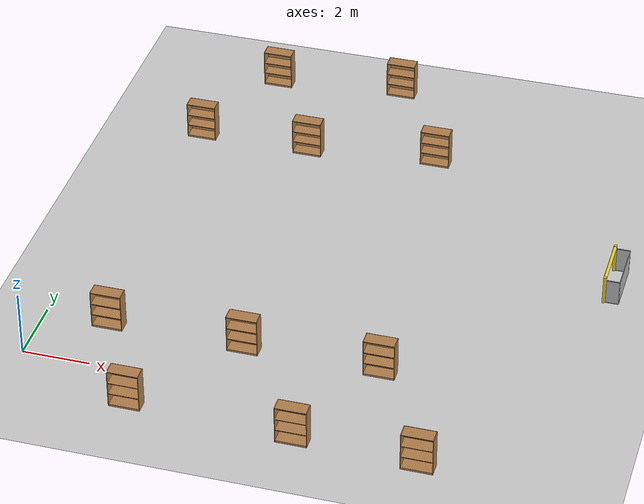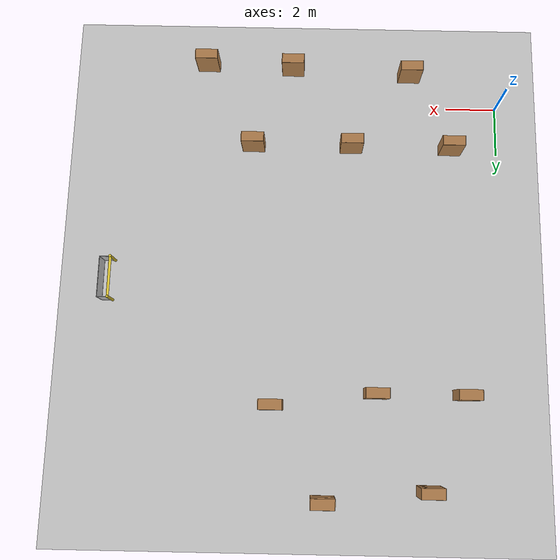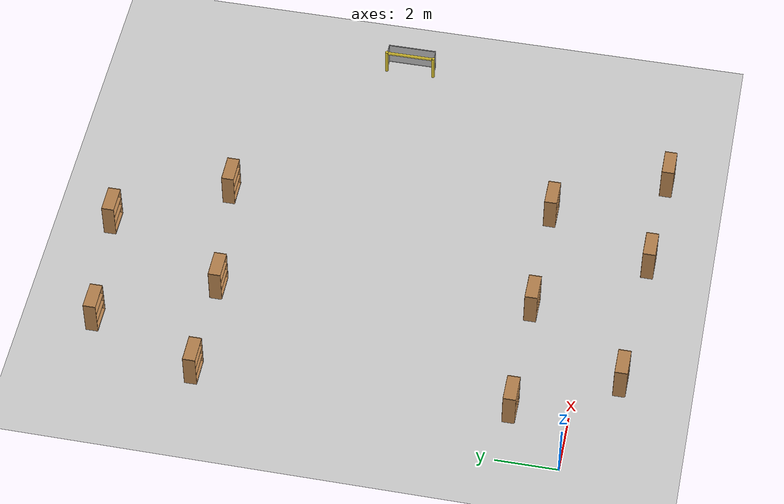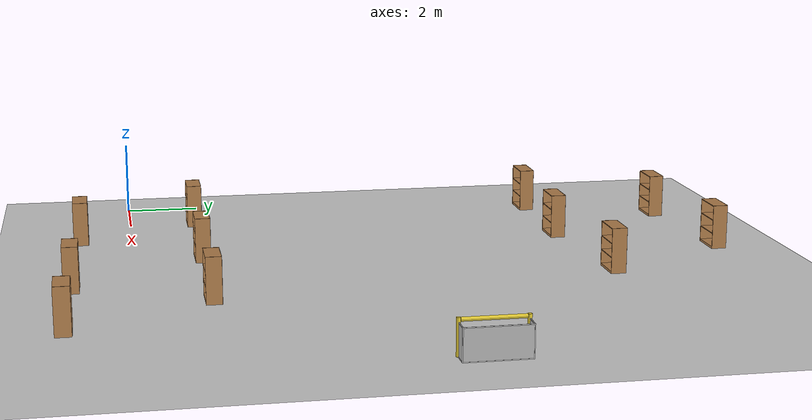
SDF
<sdf version="1.6">
 <world name="default">
  <light name="sun" type="directional">
   <pose>0 0 10 0 -0 0</pose>
   <diffuse>0.8 0.8 0.8 1</diffuse>
   <specular>0.2 0.2 0.2 1</specular>
   <attenuation>
    <range>1000</range>
    <constant>0.9</constant>
    <linear>0.01</linear>
    <quadratic>0.001</quadratic>
   </attenuation>
   <direction>-0.5 0.1 -0.9</direction>
  </light>
  <model name="ground_plane">
   <static>1</static>
   <link name="link">
    <collision name="collision">
     <geometry><plane><normal>0 0 1</normal><size>100 100</size></plane></geometry>
     <surface>
      <contact><collide_bitmask>65535</collide_bitmask></contact>
      <friction><ode><mu>100</mu><mu2>50</mu2></ode></friction>
     </surface>
    </collision>
    <visual name="visual">
     <cast_shadows>0</cast_shadows>
     <geometry><plane><normal>0 0 1</normal><size>100 100</size></plane></geometry>
     <material>
      <script><uri>file://media/materials/scripts/gazebo.material</uri><name>Gazebo/Grey</name></script>
     </material>
    </visual>
   </link>
  </model>
  <gravity>0 0 -9.8</gravity>
  <magnetic_field>6e-06 2.3e-05 -4.2e-05</magnetic_field>
  <atmosphere type="adiabatic"/>
  <physics name="default_physics" default="0" type="ode">
   <max_step_size>0.001</max_step_size>
   <real_time_factor>1</real_time_factor>
   <real_time_update_rate>1000</real_time_update_rate>
  </physics>
  <scene><ambient>0.4 0.4 0.4 1</ambient><background>0.7 0.7 0.7 1</background><shadows>1</shadows></scene>
  <spherical_coordinates>
   <surface_model>EARTH_WGS84</surface_model>
   <latitude_deg>0</latitude_deg>
   <longitude_deg>0</longitude_deg>
   <elevation>0</elevation>
   <heading_deg>0</heading_deg>
  </spherical_coordinates>
  <model name="bookshelf">
   <static>1</static>
   <link name="link">
    <inertial><mass>1</mass></inertial>
    <collision name="back">
     <pose>0 0.005 0.6 0 -0 0</pose>
     <geometry><box><size>0.9 0.01 1.2</size></box></geometry>
    </collision>
    <visual name="visual1">
     <pose>0 0.005 0.6 0 -0 0</pose>
     <geometry><box><size>0.9 0.01 1.2</size></box></geometry>
     <material>
      <script><uri>file://media/materials/scripts/gazebo.material</uri><name>Gazebo/Wood</name></script>
     </material>
    </visual>
    <collision name="left_side">
     <pose>0.45 -0.195 0.6 0 -0 0</pose>
     <geometry><box><size>0.02 0.4 1.2</size></box></geometry>
    </collision>
    <visual name="visual2">
     <pose>0.45 -0.195 0.6 0 -0 0</pose>
     <geometry><box><size>0.02 0.4 1.2</size></box></geometry>
     <material>
      <script><uri>file://media/materials/scripts/gazebo.material</uri><name>Gazebo/Wood</name></script>
     </material>
    </visual>
    <collision name="right_side">
     <pose>-0.45 -0.195 0.6 0 -0 0</pose>
     <geometry><box><size>0.02 0.4 1.2</size></box></geometry>
    </collision>
    <visual name="visual3">
     <pose>-0.45 -0.195 0.6 0 -0 0</pose>
     <geometry><box><size>0.02 0.4 1.2</size></box></geometry>
     <material>
      <script><uri>file://media/materials/scripts/gazebo.material</uri><name>Gazebo/Wood</name></script>
     </material>
    </visual>
    <collision name="bottom">
     <pose>0 -0.195 0.03 0 -0 0</pose>
     <geometry><box><size>0.88 0.4 0.06</size></box></geometry>
    </collision>
    <visual name="visual4">
     <pose>0 -0.195 0.03 0 -0 0</pose>
     <geometry><box><size>0.88 0.4 0.06</size></box></geometry>
     <material>
      <script><uri>file://media/materials/scripts/gazebo.material</uri><name>Gazebo/Wood</name></script>
     </material>
    </visual>
    <collision name="top">
     <pose>0 -0.195 1.19 0 -0 0</pose>
     <geometry><box><size>0.88 0.4 0.02</size></box></geometry>
    </collision>
    <visual name="visual5">
     <pose>0 -0.195 1.19 0 -0 0</pose>
     <geometry><box><size>0.88 0.4 0.02</size></box></geometry>
     <material>
      <script><uri>file://media/materials/scripts/gazebo.material</uri><name>Gazebo/Wood</name></script>
     </material>
    </visual>
    <collision name="low_shelf">
     <pose>0 -0.195 0.43 0 -0 0</pose>
     <geometry><box><size>0.88 0.4 0.02</size></box></geometry>
    </collision>
    <visual name="visual6">
     <pose>0 -0.195 0.43 0 -0 0</pose>
     <geometry><box><size>0.88 0.4 0.02</size></box></geometry>
     <material>
      <script><uri>file://media/materials/scripts/gazebo.material</uri><name>Gazebo/Wood</name></script>
     </material>
    </visual>
    <collision name="high_shelf">
     <pose>0 -0.195 0.8 0 -0 0</pose>
     <geometry><box><size>0.88 0.4 0.02</size></box></geometry>
    </collision>
    <visual name="visual7">
     <pose>0 -0.195 0.8 0 -0 0</pose>
     <geometry><box><size>0.88 0.4 0.02</size></box></geometry>
     <material>
      <script><uri>file://media/materials/scripts/gazebo.material</uri><name>Gazebo/Wood</name></script>
     </material>
    </visual>
   </link>
   <pose>1.93777 2.02043 0 0 -0 0</pose>
  </model>
  <model name="bookshelf_clone">
   <static>1</static>
   <link name="link">
    <inertial><mass>1</mass></inertial>
    <collision name="back">
     <pose>0 0.005 0.6 0 -0 0</pose>
     <geometry><box><size>0.9 0.01 1.2</size></box></geometry>
    </collision>
    <visual name="visual1">
     <pose>0 0.005 0.6 0 -0 0</pose>
     <geometry><box><size>0.9 0.01 1.2</size></box></geometry>
     <material>
      <script><uri>file://media/materials/scripts/gazebo.material</uri><name>Gazebo/Wood</name></script>
     </material>
    </visual>
    <collision name="left_side">
     <pose>0.45 -0.195 0.6 0 -0 0</pose>
     <geometry><box><size>0.02 0.4 1.2</size></box></geometry>
    </collision>
    <visual name="visual2">
     <pose>0.45 -0.195 0.6 0 -0 0</pose>
     <geometry><box><size>0.02 0.4 1.2</size></box></geometry>
     <material>
      <script><uri>file://media/materials/scripts/gazebo.material</uri><name>Gazebo/Wood</name></script>
     </material>
    </visual>
    <collision name="right_side">
     <pose>-0.45 -0.195 0.6 0 -0 0</pose>
     <geometry><box><size>0.02 0.4 1.2</size></box></geometry>
    </collision>
    <visual name="visual3">
     <pose>-0.45 -0.195 0.6 0 -0 0</pose>
     <geometry><box><size>0.02 0.4 1.2</size></box></geometry>
     <material>
      <script><uri>file://media/materials/scripts/gazebo.material</uri><name>Gazebo/Wood</name></script>
     </material>
    </visual>
    <collision name="bottom">
     <pose>0 -0.195 0.03 0 -0 0</pose>
     <geometry><box><size>0.88 0.4 0.06</size></box></geometry>
    </collision>
    <visual name="visual4">
     <pose>0 -0.195 0.03 0 -0 0</pose>
     <geometry><box><size>0.88 0.4 0.06</size></box></geometry>
     <material>
      <script><uri>file://media/materials/scripts/gazebo.material</uri><name>Gazebo/Wood</name></script>
     </material>
    </visual>
    <collision name="top">
     <pose>0 -0.195 1.19 0 -0 0</pose>
     <geometry><box><size>0.88 0.4 0.02</size></box></geometry>
    </collision>
    <visual name="visual5">
     <pose>0 -0.195 1.19 0 -0 0</pose>
     <geometry><box><size>0.88 0.4 0.02</size></box></geometry>
     <material>
      <script><uri>file://media/materials/scripts/gazebo.material</uri><name>Gazebo/Wood</name></script>
     </material>
    </visual>
    <collision name="low_shelf">
     <pose>0 -0.195 0.43 0 -0 0</pose>
     <geometry><box><size>0.88 0.4 0.02</size></box></geometry>
    </collision>
    <visual name="visual6">
     <pose>0 -0.195 0.43 0 -0 0</pose>
     <geometry><box><size>0.88 0.4 0.02</size></box></geometry>
     <material>
      <script><uri>file://media/materials/scripts/gazebo.material</uri><name>Gazebo/Wood</name></script>
     </material>
    </visual>
    <collision name="high_shelf">
     <pose>0 -0.195 0.8 0 -0 0</pose>
     <geometry><box><size>0.88 0.4 0.02</size></box></geometry>
    </collision>
    <visual name="visual7">
     <pose>0 -0.195 0.8 0 -0 0</pose>
     <geometry><box><size>0.88 0.4 0.02</size></box></geometry>
     <material>
      <script><uri>file://media/materials/scripts/gazebo.material</uri><name>Gazebo/Wood</name></script>
     </material>
    </visual>
   </link>
   <pose>3.58615 -1.19461 0 0 -0 0</pose>
  </model>
  <model name="bookshelf_clone_0">
   <static>1</static>
   <link name="link">
    <inertial><mass>1</mass></inertial>
    <collision name="back">
     <pose>0 0.005 0.6 0 -0 0</pose>
     <geometry><box><size>0.9 0.01 1.2</size></box></geometry>
    </collision>
    <visual name="visual1">
     <pose>0 0.005 0.6 0 -0 0</pose>
     <geometry><box><size>0.9 0.01 1.2</size></box></geometry>
     <material>
      <script><uri>file://media/materials/scripts/gazebo.material</uri><name>Gazebo/Wood</name></script>
     </material>
    </visual>
    <collision name="left_side">
     <pose>0.45 -0.195 0.6 0 -0 0</pose>
     <geometry><box><size>0.02 0.4 1.2</size></box></geometry>
    </collision>
    <visual name="visual2">
     <pose>0.45 -0.195 0.6 0 -0 0</pose>
     <geometry><box><size>0.02 0.4 1.2</size></box></geometry>
     <material>
      <script><uri>file://media/materials/scripts/gazebo.material</uri><name>Gazebo/Wood</name></script>
     </material>
    </visual>
    <collision name="right_side">
     <pose>-0.45 -0.195 0.6 0 -0 0</pose>
     <geometry><box><size>0.02 0.4 1.2</size></box></geometry>
    </collision>
    <visual name="visual3">
     <pose>-0.45 -0.195 0.6 0 -0 0</pose>
     <geometry><box><size>0.02 0.4 1.2</size></box></geometry>
     <material>
      <script><uri>file://media/materials/scripts/gazebo.material</uri><name>Gazebo/Wood</name></script>
     </material>
    </visual>
    <collision name="bottom">
     <pose>0 -0.195 0.03 0 -0 0</pose>
     <geometry><box><size>0.88 0.4 0.06</size></box></geometry>
    </collision>
    <visual name="visual4">
     <pose>0 -0.195 0.03 0 -0 0</pose>
     <geometry><box><size>0.88 0.4 0.06</size></box></geometry>
     <material>
      <script><uri>file://media/materials/scripts/gazebo.material</uri><name>Gazebo/Wood</name></script>
     </material>
    </visual>
    <collision name="top">
     <pose>0 -0.195 1.19 0 -0 0</pose>
     <geometry><box><size>0.88 0.4 0.02</size></box></geometry>
    </collision>
    <visual name="visual5">
     <pose>0 -0.195 1.19 0 -0 0</pose>
     <geometry><box><size>0.88 0.4 0.02</size></box></geometry>
     <material>
      <script><uri>file://media/materials/scripts/gazebo.material</uri><name>Gazebo/Wood</name></script>
     </material>
    </visual>
    <collision name="low_shelf">
     <pose>0 -0.195 0.43 0 -0 0</pose>
     <geometry><box><size>0.88 0.4 0.02</size></box></geometry>
    </collision>
    <visual name="visual6">
     <pose>0 -0.195 0.43 0 -0 0</pose>
     <geometry><box><size>0.88 0.4 0.02</size></box></geometry>
     <material>
      <script><uri>file://media/materials/scripts/gazebo.material</uri><name>Gazebo/Wood</name></script>
     </material>
    </visual>
    <collision name="high_shelf">
     <pose>0 -0.195 0.8 0 -0 0</pose>
     <geometry><box><size>0.88 0.4 0.02</size></box></geometry>
    </collision>
    <visual name="visual7">
     <pose>0 -0.195 0.8 0 -0 0</pose>
     <geometry><box><size>0.88 0.4 0.02</size></box></geometry>
     <material>
      <script><uri>file://media/materials/scripts/gazebo.material</uri><name>Gazebo/Wood</name></script>
     </material>
    </visual>
   </link>
   <pose>6 2 0 0 -0 0</pose>
  </model>
  <model name="bookshelf_clone_1">
   <static>1</static>
   <link name="link">
    <inertial><mass>1</mass></inertial>
    <collision name="back">
     <pose>0 0.005 0.6 0 -0 0</pose>
     <geometry><box><size>0.9 0.01 1.2</size></box></geometry>
    </collision>
    <visual name="visual1">
     <pose>0 0.005 0.6 0 -0 0</pose>
     <geometry><box><size>0.9 0.01 1.2</size></box></geometry>
     <material>
      <script><uri>file://media/materials/scripts/gazebo.material</uri><name>Gazebo/Wood</name></script>
     </material>
    </visual>
    <collision name="left_side">
     <pose>0.45 -0.195 0.6 0 -0 0</pose>
     <geometry><box><size>0.02 0.4 1.2</size></box></geometry>
    </collision>
    <visual name="visual2">
     <pose>0.45 -0.195 0.6 0 -0 0</pose>
     <geometry><box><size>0.02 0.4 1.2</size></box></geometry>
     <material>
      <script><uri>file://media/materials/scripts/gazebo.material</uri><name>Gazebo/Wood</name></script>
     </material>
    </visual>
    <collision name="right_side">
     <pose>-0.45 -0.195 0.6 0 -0 0</pose>
     <geometry><box><size>0.02 0.4 1.2</size></box></geometry>
    </collision>
    <visual name="visual3">
     <pose>-0.45 -0.195 0.6 0 -0 0</pose>
     <geometry><box><size>0.02 0.4 1.2</size></box></geometry>
     <material>
      <script><uri>file://media/materials/scripts/gazebo.material</uri><name>Gazebo/Wood</name></script>
     </material>
    </visual>
    <collision name="bottom">
     <pose>0 -0.195 0.03 0 -0 0</pose>
     <geometry><box><size>0.88 0.4 0.06</size></box></geometry>
    </collision>
    <visual name="visual4">
     <pose>0 -0.195 0.03 0 -0 0</pose>
     <geometry><box><size>0.88 0.4 0.06</size></box></geometry>
     <material>
      <script><uri>file://media/materials/scripts/gazebo.material</uri><name>Gazebo/Wood</name></script>
     </material>
    </visual>
    <collision name="top">
     <pose>0 -0.195 1.19 0 -0 0</pose>
     <geometry><box><size>0.88 0.4 0.02</size></box></geometry>
    </collision>
    <visual name="visual5">
     <pose>0 -0.195 1.19 0 -0 0</pose>
     <geometry><box><size>0.88 0.4 0.02</size></box></geometry>
     <material>
      <script><uri>file://media/materials/scripts/gazebo.material</uri><name>Gazebo/Wood</name></script>
     </material>
    </visual>
    <collision name="low_shelf">
     <pose>0 -0.195 0.43 0 -0 0</pose>
     <geometry><box><size>0.88 0.4 0.02</size></box></geometry>
    </collision>
    <visual name="visual6">
     <pose>0 -0.195 0.43 0 -0 0</pose>
     <geometry><box><size>0.88 0.4 0.02</size></box></geometry>
     <material>
      <script><uri>file://media/materials/scripts/gazebo.material</uri><name>Gazebo/Wood</name></script>
     </material>
    </visual>
    <collision name="high_shelf">
     <pose>0 -0.195 0.8 0 -0 0</pose>
     <geometry><box><size>0.88 0.4 0.02</size></box></geometry>
    </collision>
    <visual name="visual7">
     <pose>0 -0.195 0.8 0 -0 0</pose>
     <geometry><box><size>0.88 0.4 0.02</size></box></geometry>
     <material>
      <script><uri>file://media/materials/scripts/gazebo.material</uri><name>Gazebo/Wood</name></script>
     </material>
    </visual>
   </link>
   <pose>8.4475 -1.41546 0 0 -0 0</pose>
  </model>
  <model name="bookshelf_clone_2">
   <static>1</static>
   <link name="link">
    <inertial><mass>1</mass></inertial>
    <collision name="back">
     <pose>0 0.005 0.6 0 -0 0</pose>
     <geometry><box><size>0.9 0.01 1.2</size></box></geometry>
    </collision>
    <visual name="visual1">
     <pose>0 0.005 0.6 0 -0 0</pose>
     <geometry><box><size>0.9 0.01 1.2</size></box></geometry>
     <material>
      <script><uri>file://media/materials/scripts/gazebo.material</uri><name>Gazebo/Wood</name></script>
     </material>
    </visual>
    <collision name="left_side">
     <pose>0.45 -0.195 0.6 0 -0 0</pose>
     <geometry><box><size>0.02 0.4 1.2</size></box></geometry>
    </collision>
    <visual name="visual2">
     <pose>0.45 -0.195 0.6 0 -0 0</pose>
     <geometry><box><size>0.02 0.4 1.2</size></box></geometry>
     <material>
      <script><uri>file://media/materials/scripts/gazebo.material</uri><name>Gazebo/Wood</name></script>
     </material>
    </visual>
    <collision name="right_side">
     <pose>-0.45 -0.195 0.6 0 -0 0</pose>
     <geometry><box><size>0.02 0.4 1.2</size></box></geometry>
    </collision>
    <visual name="visual3">
     <pose>-0.45 -0.195 0.6 0 -0 0</pose>
     <geometry><box><size>0.02 0.4 1.2</size></box></geometry>
     <material>
      <script><uri>file://media/materials/scripts/gazebo.material</uri><name>Gazebo/Wood</name></script>
     </material>
    </visual>
    <collision name="bottom">
     <pose>0 -0.195 0.03 0 -0 0</pose>
     <geometry><box><size>0.88 0.4 0.06</size></box></geometry>
    </collision>
    <visual name="visual4">
     <pose>0 -0.195 0.03 0 -0 0</pose>
     <geometry><box><size>0.88 0.4 0.06</size></box></geometry>
     <material>
      <script><uri>file://media/materials/scripts/gazebo.material</uri><name>Gazebo/Wood</name></script>
     </material>
    </visual>
    <collision name="top">
     <pose>0 -0.195 1.19 0 -0 0</pose>
     <geometry><box><size>0.88 0.4 0.02</size></box></geometry>
    </collision>
    <visual name="visual5">
     <pose>0 -0.195 1.19 0 -0 0</pose>
     <geometry><box><size>0.88 0.4 0.02</size></box></geometry>
     <material>
      <script><uri>file://media/materials/scripts/gazebo.material</uri><name>Gazebo/Wood</name></script>
     </material>
    </visual>
    <collision name="low_shelf">
     <pose>0 -0.195 0.43 0 -0 0</pose>
     <geometry><box><size>0.88 0.4 0.02</size></box></geometry>
    </collision>
    <visual name="visual6">
     <pose>0 -0.195 0.43 0 -0 0</pose>
     <geometry><box><size>0.88 0.4 0.02</size></box></geometry>
     <material>
      <script><uri>file://media/materials/scripts/gazebo.material</uri><name>Gazebo/Wood</name></script>
     </material>
    </visual>
    <collision name="high_shelf">
     <pose>0 -0.195 0.8 0 -0 0</pose>
     <geometry><box><size>0.88 0.4 0.02</size></box></geometry>
    </collision>
    <visual name="visual7">
     <pose>0 -0.195 0.8 0 -0 0</pose>
     <geometry><box><size>0.88 0.4 0.02</size></box></geometry>
     <material>
      <script><uri>file://media/materials/scripts/gazebo.material</uri><name>Gazebo/Wood</name></script>
     </material>
    </visual>
   </link>
   <pose>10 2 0 0 -0 0</pose>
  </model>
  <model name="bookshelf_clone_3">
   <static>1</static>
   <link name="link">
    <inertial><mass>1</mass></inertial>
    <collision name="back">
     <pose>0 0.005 0.6 0 -0 0</pose>
     <geometry><box><size>0.9 0.01 1.2</size></box></geometry>
    </collision>
    <visual name="visual1">
     <pose>0 0.005 0.6 0 -0 0</pose>
     <geometry><box><size>0.9 0.01 1.2</size></box></geometry>
     <material>
      <script><uri>file://media/materials/scripts/gazebo.material</uri><name>Gazebo/Wood</name></script>
     </material>
    </visual>
    <collision name="left_side">
     <pose>0.45 -0.195 0.6 0 -0 0</pose>
     <geometry><box><size>0.02 0.4 1.2</size></box></geometry>
    </collision>
    <visual name="visual2">
     <pose>0.45 -0.195 0.6 0 -0 0</pose>
     <geometry><box><size>0.02 0.4 1.2</size></box></geometry>
     <material>
      <script><uri>file://media/materials/scripts/gazebo.material</uri><name>Gazebo/Wood</name></script>
     </material>
    </visual>
    <collision name="right_side">
     <pose>-0.45 -0.195 0.6 0 -0 0</pose>
     <geometry><box><size>0.02 0.4 1.2</size></box></geometry>
    </collision>
    <visual name="visual3">
     <pose>-0.45 -0.195 0.6 0 -0 0</pose>
     <geometry><box><size>0.02 0.4 1.2</size></box></geometry>
     <material>
      <script><uri>file://media/materials/scripts/gazebo.material</uri><name>Gazebo/Wood</name></script>
     </material>
    </visual>
    <collision name="bottom">
     <pose>0 -0.195 0.03 0 -0 0</pose>
     <geometry><box><size>0.88 0.4 0.06</size></box></geometry>
    </collision>
    <visual name="visual4">
     <pose>0 -0.195 0.03 0 -0 0</pose>
     <geometry><box><size>0.88 0.4 0.06</size></box></geometry>
     <material>
      <script><uri>file://media/materials/scripts/gazebo.material</uri><name>Gazebo/Wood</name></script>
     </material>
    </visual>
    <collision name="top">
     <pose>0 -0.195 1.19 0 -0 0</pose>
     <geometry><box><size>0.88 0.4 0.02</size></box></geometry>
    </collision>
    <visual name="visual5">
     <pose>0 -0.195 1.19 0 -0 0</pose>
     <geometry><box><size>0.88 0.4 0.02</size></box></geometry>
     <material>
      <script><uri>file://media/materials/scripts/gazebo.material</uri><name>Gazebo/Wood</name></script>
     </material>
    </visual>
    <collision name="low_shelf">
     <pose>0 -0.195 0.43 0 -0 0</pose>
     <geometry><box><size>0.88 0.4 0.02</size></box></geometry>
    </collision>
    <visual name="visual6">
     <pose>0 -0.195 0.43 0 -0 0</pose>
     <geometry><box><size>0.88 0.4 0.02</size></box></geometry>
     <material>
      <script><uri>file://media/materials/scripts/gazebo.material</uri><name>Gazebo/Wood</name></script>
     </material>
    </visual>
    <collision name="high_shelf">
     <pose>0 -0.195 0.8 0 -0 0</pose>
     <geometry><box><size>0.88 0.4 0.02</size></box></geometry>
    </collision>
    <visual name="visual7">
     <pose>0 -0.195 0.8 0 -0 0</pose>
     <geometry><box><size>0.88 0.4 0.02</size></box></geometry>
     <material>
      <script><uri>file://media/materials/scripts/gazebo.material</uri><name>Gazebo/Wood</name></script>
     </material>
    </visual>
   </link>
   <pose>12 -1.55767 0 0 -0 0</pose>
  </model>
  <model name="RoboCup 2014 SPL Goal">
   <static>1</static>
   <link name="left_post">
    <pose>0 0.8 0.45 0 -0 0</pose>
    <collision name="collision">
     <geometry><cylinder><radius>0.05</radius><length>0.9</length></cylinder></geometry>
    </collision>
    <visual name="visual">
     <geometry><cylinder><radius>0.05</radius><length>0.9</length></cylinder></geometry>
     <material>
      <script><uri>file://media/materials/scripts/gazebo.material</uri><name>Gazebo/ZincYellow</name></script>
     </material>
    </visual>
   </link>
   <link name="left_support_horiz_lower">
    <pose>0.24 0.8 0.01 0 -0 0</pose>
    <collision name="collision"><geometry><box><size>0.38 0.02 0.02</size></box></geometry></collision>
    <visual name="visual">
     <geometry><box><size>0.38 0.02 0.02</size></box></geometry>
     <material>
      <script><uri>file://media/materials/scripts/gazebo.material</uri><name>Gazebo/White</name></script>
     </material>
    </visual>
   </link>
   <link name="left_support_horiz_upper">
    <pose>0.24 0.8 0.79 0 -0 0</pose>
    <collision name="collision"><geometry><box><size>0.38 0.02 0.02</size></box></geometry></collision>
    <visual name="visual">
     <geometry><box><size>0.38 0.02 0.02</size></box></geometry>
     <material>
      <script><uri>file://media/materials/scripts/gazebo.material</uri><name>Gazebo/White</name></script>
     </material>
    </visual>
   </link>
   <link name="left_support_vertical">
    <pose>0.44 0.8 0.4 3.14159 1.57079 3.14159</pose>
    <collision name="collision"><geometry><box><size>0.8 0.02 0.02</size></box></geometry></collision>
    <visual name="visual">
     <geometry><box><size>0.8 0.02 0.02</size></box></geometry>
     <material>
      <script><uri>file://media/materials/scripts/gazebo.material</uri><name>Gazebo/White</name></script>
     </material>
    </visual>
   </link>
   <link name="right_support_horiz_lower">
    <pose>0.24 -0.8 0.01 0 -0 0</pose>
    <collision name="collision"><geometry><box><size>0.38 0.02 0.02</size></box></geometry></collision>
    <visual name="visual">
     <geometry><box><size>0.38 0.02 0.02</size></box></geometry>
     <material>
      <script><uri>file://media/materials/scripts/gazebo.material</uri><name>Gazebo/White</name></script>
     </material>
    </visual>
   </link>
   <link name="right_support_horiz_upper">
    <pose>0.24 -0.8 0.79 0 -0 0</pose>
    <collision name="collision"><geometry><box><size>0.38 0.02 0.02</size></box></geometry></collision>
    <visual name="visual">
     <geometry><box><size>0.38 0.02 0.02</size></box></geometry>
     <material>
      <script><uri>file://media/materials/scripts/gazebo.material</uri><name>Gazebo/White</name></script>
     </material>
    </visual>
   </link>
   <link name="right_support_vertical">
    <pose>0.44 -0.8 0.4 3.14159 1.57079 3.14159</pose>
    <collision name="collision"><geometry><box><size>0.8 0.02 0.02</size></box></geometry></collision>
    <visual name="visual">
     <geometry><box><size>0.8 0.02 0.02</size></box></geometry>
     <material>
      <script><uri>file://media/materials/scripts/gazebo.material</uri><name>Gazebo/White</name></script>
     </material>
    </visual>
   </link>
   <link name="center_support_horiz_lower">
    <pose>0.44 0 0.01 3.14159 1.57079 3.14159</pose>
    <collision name="collision"><geometry><box><size>0.02 1.58 0.02</size></box></geometry></collision>
    <visual name="visual">
     <geometry><box><size>0.02 1.58 0.02</size></box></geometry>
     <material>
      <script><uri>file://media/materials/scripts/gazebo.material</uri><name>Gazebo/White</name></script>
     </material>
    </visual>
   </link>
   <link name="center_support_horiz_upper">
    <pose>0.44 0 0.79 3.14159 1.57079 3.14159</pose>
    <collision name="collision"><geometry><box><size>0.02 1.58 0.02</size></box></geometry></collision>
    <visual name="visual">
     <geometry><box><size>0.02 1.58 0.02</size></box></geometry>
     <material>
      <script><uri>file://media/materials/scripts/gazebo.material</uri><name>Gazebo/White</name></script>
     </material>
    </visual>
   </link>
   <link name="right_post">
    <pose>0 -0.8 0.45 0 -0 0</pose>
    <collision name="collision">
     <geometry><cylinder><radius>0.05</radius><length>0.9</length></cylinder></geometry>
    </collision>
    <visual name="visual">
     <geometry><cylinder><radius>0.05</radius><length>0.9</length></cylinder></geometry>
     <material>
      <script><uri>file://media/materials/scripts/gazebo.material</uri><name>Gazebo/ZincYellow</name></script>
     </material>
    </visual>
   </link>
   <link name="crossbar">
    <pose>0 0 0.85 1.57 1.57 0</pose>
    <collision name="collision">
     <geometry><cylinder><radius>0.05</radius><length>1.5</length></cylinder></geometry>
    </collision>
    <visual name="visual">
     <geometry><cylinder><radius>0.05</radius><length>1.5</length></cylinder></geometry>
     <material>
      <script><uri>file://media/materials/scripts/gazebo.material</uri><name>Gazebo/ZincYellow</name></script>
     </material>
    </visual>
   </link>
   <link name="center_net">
    <pose>0.44 0 0.4 0 -0 0</pose>
    <collision name="collision"><geometry><box><size>0.01 1.6 0.8</size></box></geometry></collision>
    <visual name="visual">
     <geometry><box><size>0.01 1.6 0.8</size></box></geometry>
     <material>
      <script>
       <uri>model://robocup09_spl_field/materials/scripts/</uri>
       <uri>model://robocup09_spl_field/materials/textures/</uri>
       <name>RoboCup/Net</name>
      </script>
     </material>
    </visual>
   </link>
   <link name="left_net">
    <pose>0.24 0.8 0.4 0 -0 0</pose>
    <collision name="collision"><geometry><box><size>0.38 0.01 0.76</size></box></geometry></collision>
    <visual name="visual">
     <geometry><box><size>0.38 0.01 0.76</size></box></geometry>
     <material>
      <script>
       <uri>model://robocup09_spl_field/materials/scripts/</uri>
       <uri>model://robocup09_spl_field/materials/textures/</uri>
       <name>RoboCup/Net</name>
      </script>
     </material>
    </visual>
   </link>
   <link name="right_net">
    <pose>0.24 -0.8 0.4 0 -0 0</pose>
    <collision name="collision"><geometry><box><size>0.38 0.01 0.76</size></box></geometry></collision>
    <visual name="visual">
     <geometry><box><size>0.38 0.01 0.76</size></box></geometry>
     <material>
      <script>
       <uri>model://robocup09_spl_field/materials/scripts/</uri>
       <uri>model://robocup09_spl_field/materials/textures/</uri>
       <name>RoboCup/Net</name>
      </script>
     </material>
    </visual>
   </link>
   <pose>15.4004 7.53163 0 0 -0 0</pose>
  </model>
  <model name="bookshelf_0">
   <static>1</static>
   <link name="link">
    <inertial><mass>1</mass></inertial>
    <collision name="back">
     <pose>0 0.005 0.6 0 -0 0</pose>
     <geometry><box><size>0.9 0.01 1.2</size></box></geometry>
    </collision>
    <visual name="visual1">
     <pose>0 0.005 0.6 0 -0 0</pose>
     <geometry><box><size>0.9 0.01 1.2</size></box></geometry>
     <material>
      <script><uri>file://media/materials/scripts/gazebo.material</uri><name>Gazebo/Wood</name></script>
     </material>
    </visual>
    <collision name="left_side">
     <pose>0.45 -0.195 0.6 0 -0 0</pose>
     <geometry><box><size>0.02 0.4 1.2</size></box></geometry>
    </collision>
    <visual name="visual2">
     <pose>0.45 -0.195 0.6 0 -0 0</pose>
     <geometry><box><size>0.02 0.4 1.2</size></box></geometry>
     <material>
      <script><uri>file://media/materials/scripts/gazebo.material</uri><name>Gazebo/Wood</name></script>
     </material>
    </visual>
    <collision name="right_side">
     <pose>-0.45 -0.195 0.6 0 -0 0</pose>
     <geometry><box><size>0.02 0.4 1.2</size></box></geometry>
    </collision>
    <visual name="visual3">
     <pose>-0.45 -0.195 0.6 0 -0 0</pose>
     <geometry><box><size>0.02 0.4 1.2</size></box></geometry>
     <material>
      <script><uri>file://media/materials/scripts/gazebo.material</uri><name>Gazebo/Wood</name></script>
     </material>
    </visual>
    <collision name="bottom">
     <pose>0 -0.195 0.03 0 -0 0</pose>
     <geometry><box><size>0.88 0.4 0.06</size></box></geometry>
    </collision>
    <visual name="visual4">
     <pose>0 -0.195 0.03 0 -0 0</pose>
     <geometry><box><size>0.88 0.4 0.06</size></box></geometry>
     <material>
      <script><uri>file://media/materials/scripts/gazebo.material</uri><name>Gazebo/Wood</name></script>
     </material>
    </visual>
    <collision name="top">
     <pose>0 -0.195 1.19 0 -0 0</pose>
     <geometry><box><size>0.88 0.4 0.02</size></box></geometry>
    </collision>
    <visual name="visual5">
     <pose>0 -0.195 1.19 0 -0 0</pose>
     <geometry><box><size>0.88 0.4 0.02</size></box></geometry>
     <material>
      <script><uri>file://media/materials/scripts/gazebo.material</uri><name>Gazebo/Wood</name></script>
     </material>
    </visual>
    <collision name="low_shelf">
     <pose>0 -0.195 0.43 0 -0 0</pose>
     <geometry><box><size>0.88 0.4 0.02</size></box></geometry>
    </collision>
    <visual name="visual6">
     <pose>0 -0.195 0.43 0 -0 0</pose>
     <geometry><box><size>0.88 0.4 0.02</size></box></geometry>
     <material>
      <script><uri>file://media/materials/scripts/gazebo.material</uri><name>Gazebo/Wood</name></script>
     </material>
    </visual>
    <collision name="high_shelf">
     <pose>0 -0.195 0.8 0 -0 0</pose>
     <geometry><box><size>0.88 0.4 0.02</size></box></geometry>
    </collision>
    <visual name="visual7">
     <pose>0 -0.195 0.8 0 -0 0</pose>
     <geometry><box><size>0.88 0.4 0.02</size></box></geometry>
     <material>
      <script><uri>file://media/materials/scripts/gazebo.material</uri><name>Gazebo/Wood</name></script>
     </material>
    </visual>
   </link>
   <pose>9 12.4923 0 0 -0 0</pose>
  </model>
  <model name="bookshelf_0_clone">
   <static>1</static>
   <link name="link">
    <inertial><mass>1</mass></inertial>
    <collision name="back">
     <pose>0 0.005 0.6 0 -0 0</pose>
     <geometry><box><size>0.9 0.01 1.2</size></box></geometry>
    </collision>
    <visual name="visual1">
     <pose>0 0.005 0.6 0 -0 0</pose>
     <geometry><box><size>0.9 0.01 1.2</size></box></geometry>
     <material>
      <script><uri>file://media/materials/scripts/gazebo.material</uri><name>Gazebo/Wood</name></script>
     </material>
    </visual>
    <collision name="left_side">
     <pose>0.45 -0.195 0.6 0 -0 0</pose>
     <geometry><box><size>0.02 0.4 1.2</size></box></geometry>
    </collision>
    <visual name="visual2">
     <pose>0.45 -0.195 0.6 0 -0 0</pose>
     <geometry><box><size>0.02 0.4 1.2</size></box></geometry>
     <material>
      <script><uri>file://media/materials/scripts/gazebo.material</uri><name>Gazebo/Wood</name></script>
     </material>
    </visual>
    <collision name="right_side">
     <pose>-0.45 -0.195 0.6 0 -0 0</pose>
     <geometry><box><size>0.02 0.4 1.2</size></box></geometry>
    </collision>
    <visual name="visual3">
     <pose>-0.45 -0.195 0.6 0 -0 0</pose>
     <geometry><box><size>0.02 0.4 1.2</size></box></geometry>
     <material>
      <script><uri>file://media/materials/scripts/gazebo.material</uri><name>Gazebo/Wood</name></script>
     </material>
    </visual>
    <collision name="bottom">
     <pose>0 -0.195 0.03 0 -0 0</pose>
     <geometry><box><size>0.88 0.4 0.06</size></box></geometry>
    </collision>
    <visual name="visual4">
     <pose>0 -0.195 0.03 0 -0 0</pose>
     <geometry><box><size>0.88 0.4 0.06</size></box></geometry>
     <material>
      <script><uri>file://media/materials/scripts/gazebo.material</uri><name>Gazebo/Wood</name></script>
     </material>
    </visual>
    <collision name="top">
     <pose>0 -0.195 1.19 0 -0 0</pose>
     <geometry><box><size>0.88 0.4 0.02</size></box></geometry>
    </collision>
    <visual name="visual5">
     <pose>0 -0.195 1.19 0 -0 0</pose>
     <geometry><box><size>0.88 0.4 0.02</size></box></geometry>
     <material>
      <script><uri>file://media/materials/scripts/gazebo.material</uri><name>Gazebo/Wood</name></script>
     </material>
    </visual>
    <collision name="low_shelf">
     <pose>0 -0.195 0.43 0 -0 0</pose>
     <geometry><box><size>0.88 0.4 0.02</size></box></geometry>
    </collision>
    <visual name="visual6">
     <pose>0 -0.195 0.43 0 -0 0</pose>
     <geometry><box><size>0.88 0.4 0.02</size></box></geometry>
     <material>
      <script><uri>file://media/materials/scripts/gazebo.material</uri><name>Gazebo/Wood</name></script>
     </material>
    </visual>
    <collision name="high_shelf">
     <pose>0 -0.195 0.8 0 -0 0</pose>
     <geometry><box><size>0.88 0.4 0.02</size></box></geometry>
    </collision>
    <visual name="visual7">
     <pose>0 -0.195 0.8 0 -0 0</pose>
     <geometry><box><size>0.88 0.4 0.02</size></box></geometry>
     <material>
      <script><uri>file://media/materials/scripts/gazebo.material</uri><name>Gazebo/Wood</name></script>
     </material>
    </visual>
   </link>
   <pose>7 16 0 0 -0 0</pose>
  </model>
  <model name="bookshelf_0_clone_0">
   <static>1</static>
   <link name="link">
    <inertial><mass>1</mass></inertial>
    <collision name="back">
     <pose>0 0.005 0.6 0 -0 0</pose>
     <geometry><box><size>0.9 0.01 1.2</size></box></geometry>
    </collision>
    <visual name="visual1">
     <pose>0 0.005 0.6 0 -0 0</pose>
     <geometry><box><size>0.9 0.01 1.2</size></box></geometry>
     <material>
      <script><uri>file://media/materials/scripts/gazebo.material</uri><name>Gazebo/Wood</name></script>
     </material>
    </visual>
    <collision name="left_side">
     <pose>0.45 -0.195 0.6 0 -0 0</pose>
     <geometry><box><size>0.02 0.4 1.2</size></box></geometry>
    </collision>
    <visual name="visual2">
     <pose>0.45 -0.195 0.6 0 -0 0</pose>
     <geometry><box><size>0.02 0.4 1.2</size></box></geometry>
     <material>
      <script><uri>file://media/materials/scripts/gazebo.material</uri><name>Gazebo/Wood</name></script>
     </material>
    </visual>
    <collision name="right_side">
     <pose>-0.45 -0.195 0.6 0 -0 0</pose>
     <geometry><box><size>0.02 0.4 1.2</size></box></geometry>
    </collision>
    <visual name="visual3">
     <pose>-0.45 -0.195 0.6 0 -0 0</pose>
     <geometry><box><size>0.02 0.4 1.2</size></box></geometry>
     <material>
      <script><uri>file://media/materials/scripts/gazebo.material</uri><name>Gazebo/Wood</name></script>
     </material>
    </visual>
    <collision name="bottom">
     <pose>0 -0.195 0.03 0 -0 0</pose>
     <geometry><box><size>0.88 0.4 0.06</size></box></geometry>
    </collision>
    <visual name="visual4">
     <pose>0 -0.195 0.03 0 -0 0</pose>
     <geometry><box><size>0.88 0.4 0.06</size></box></geometry>
     <material>
      <script><uri>file://media/materials/scripts/gazebo.material</uri><name>Gazebo/Wood</name></script>
     </material>
    </visual>
    <collision name="top">
     <pose>0 -0.195 1.19 0 -0 0</pose>
     <geometry><box><size>0.88 0.4 0.02</size></box></geometry>
    </collision>
    <visual name="visual5">
     <pose>0 -0.195 1.19 0 -0 0</pose>
     <geometry><box><size>0.88 0.4 0.02</size></box></geometry>
     <material>
      <script><uri>file://media/materials/scripts/gazebo.material</uri><name>Gazebo/Wood</name></script>
     </material>
    </visual>
    <collision name="low_shelf">
     <pose>0 -0.195 0.43 0 -0 0</pose>
     <geometry><box><size>0.88 0.4 0.02</size></box></geometry>
    </collision>
    <visual name="visual6">
     <pose>0 -0.195 0.43 0 -0 0</pose>
     <geometry><box><size>0.88 0.4 0.02</size></box></geometry>
     <material>
      <script><uri>file://media/materials/scripts/gazebo.material</uri><name>Gazebo/Wood</name></script>
     </material>
    </visual>
    <collision name="high_shelf">
     <pose>0 -0.195 0.8 0 -0 0</pose>
     <geometry><box><size>0.88 0.4 0.02</size></box></geometry>
    </collision>
    <visual name="visual7">
     <pose>0 -0.195 0.8 0 -0 0</pose>
     <geometry><box><size>0.88 0.4 0.02</size></box></geometry>
     <material>
      <script><uri>file://media/materials/scripts/gazebo.material</uri><name>Gazebo/Wood</name></script>
     </material>
    </visual>
   </link>
   <pose>3 15.5606 0 0 -0 0</pose>
  </model>
  <model name="bookshelf_0_clone_1">
   <static>1</static>
   <link name="link">
    <inertial><mass>1</mass></inertial>
    <collision name="back">
     <pose>0 0.005 0.6 0 -0 0</pose>
     <geometry><box><size>0.9 0.01 1.2</size></box></geometry>
    </collision>
    <visual name="visual1">
     <pose>0 0.005 0.6 0 -0 0</pose>
     <geometry><box><size>0.9 0.01 1.2</size></box></geometry>
     <material>
      <script><uri>file://media/materials/scripts/gazebo.material</uri><name>Gazebo/Wood</name></script>
     </material>
    </visual>
    <collision name="left_side">
     <pose>0.45 -0.195 0.6 0 -0 0</pose>
     <geometry><box><size>0.02 0.4 1.2</size></box></geometry>
    </collision>
    <visual name="visual2">
     <pose>0.45 -0.195 0.6 0 -0 0</pose>
     <geometry><box><size>0.02 0.4 1.2</size></box></geometry>
     <material>
      <script><uri>file://media/materials/scripts/gazebo.material</uri><name>Gazebo/Wood</name></script>
     </material>
    </visual>
    <collision name="right_side">
     <pose>-0.45 -0.195 0.6 0 -0 0</pose>
     <geometry><box><size>0.02 0.4 1.2</size></box></geometry>
    </collision>
    <visual name="visual3">
     <pose>-0.45 -0.195 0.6 0 -0 0</pose>
     <geometry><box><size>0.02 0.4 1.2</size></box></geometry>
     <material>
      <script><uri>file://media/materials/scripts/gazebo.material</uri><name>Gazebo/Wood</name></script>
     </material>
    </visual>
    <collision name="bottom">
     <pose>0 -0.195 0.03 0 -0 0</pose>
     <geometry><box><size>0.88 0.4 0.06</size></box></geometry>
    </collision>
    <visual name="visual4">
     <pose>0 -0.195 0.03 0 -0 0</pose>
     <geometry><box><size>0.88 0.4 0.06</size></box></geometry>
     <material>
      <script><uri>file://media/materials/scripts/gazebo.material</uri><name>Gazebo/Wood</name></script>
     </material>
    </visual>
    <collision name="top">
     <pose>0 -0.195 1.19 0 -0 0</pose>
     <geometry><box><size>0.88 0.4 0.02</size></box></geometry>
    </collision>
    <visual name="visual5">
     <pose>0 -0.195 1.19 0 -0 0</pose>
     <geometry><box><size>0.88 0.4 0.02</size></box></geometry>
     <material>
      <script><uri>file://media/materials/scripts/gazebo.material</uri><name>Gazebo/Wood</name></script>
     </material>
    </visual>
    <collision name="low_shelf">
     <pose>0 -0.195 0.43 0 -0 0</pose>
     <geometry><box><size>0.88 0.4 0.02</size></box></geometry>
    </collision>
    <visual name="visual6">
     <pose>0 -0.195 0.43 0 -0 0</pose>
     <geometry><box><size>0.88 0.4 0.02</size></box></geometry>
     <material>
      <script><uri>file://media/materials/scripts/gazebo.material</uri><name>Gazebo/Wood</name></script>
     </material>
    </visual>
    <collision name="high_shelf">
     <pose>0 -0.195 0.8 0 -0 0</pose>
     <geometry><box><size>0.88 0.4 0.02</size></box></geometry>
    </collision>
    <visual name="visual7">
     <pose>0 -0.195 0.8 0 -0 0</pose>
     <geometry><box><size>0.88 0.4 0.02</size></box></geometry>
     <material>
      <script><uri>file://media/materials/scripts/gazebo.material</uri><name>Gazebo/Wood</name></script>
     </material>
    </visual>
   </link>
   <pose>5 12 0 0 -0 0</pose>
  </model>
  <model name="bookshelf_0_clone_2">
   <static>1</static>
   <link name="link">
    <inertial><mass>1</mass></inertial>
    <collision name="back">
     <pose>0 0.005 0.6 0 -0 0</pose>
     <geometry><box><size>0.9 0.01 1.2</size></box></geometry>
    </collision>
    <visual name="visual1">
     <pose>0 0.005 0.6 0 -0 0</pose>
     <geometry><box><size>0.9 0.01 1.2</size></box></geometry>
     <material>
      <script><uri>file://media/materials/scripts/gazebo.material</uri><name>Gazebo/Wood</name></script>
     </material>
    </visual>
    <collision name="left_side">
     <pose>0.45 -0.195 0.6 0 -0 0</pose>
     <geometry><box><size>0.02 0.4 1.2</size></box></geometry>
    </collision>
    <visual name="visual2">
     <pose>0.45 -0.195 0.6 0 -0 0</pose>
     <geometry><box><size>0.02 0.4 1.2</size></box></geometry>
     <material>
      <script><uri>file://media/materials/scripts/gazebo.material</uri><name>Gazebo/Wood</name></script>
     </material>
    </visual>
    <collision name="right_side">
     <pose>-0.45 -0.195 0.6 0 -0 0</pose>
     <geometry><box><size>0.02 0.4 1.2</size></box></geometry>
    </collision>
    <visual name="visual3">
     <pose>-0.45 -0.195 0.6 0 -0 0</pose>
     <geometry><box><size>0.02 0.4 1.2</size></box></geometry>
     <material>
      <script><uri>file://media/materials/scripts/gazebo.material</uri><name>Gazebo/Wood</name></script>
     </material>
    </visual>
    <collision name="bottom">
     <pose>0 -0.195 0.03 0 -0 0</pose>
     <geometry><box><size>0.88 0.4 0.06</size></box></geometry>
    </collision>
    <visual name="visual4">
     <pose>0 -0.195 0.03 0 -0 0</pose>
     <geometry><box><size>0.88 0.4 0.06</size></box></geometry>
     <material>
      <script><uri>file://media/materials/scripts/gazebo.material</uri><name>Gazebo/Wood</name></script>
     </material>
    </visual>
    <collision name="top">
     <pose>0 -0.195 1.19 0 -0 0</pose>
     <geometry><box><size>0.88 0.4 0.02</size></box></geometry>
    </collision>
    <visual name="visual5">
     <pose>0 -0.195 1.19 0 -0 0</pose>
     <geometry><box><size>0.88 0.4 0.02</size></box></geometry>
     <material>
      <script><uri>file://media/materials/scripts/gazebo.material</uri><name>Gazebo/Wood</name></script>
     </material>
    </visual>
    <collision name="low_shelf">
     <pose>0 -0.195 0.43 0 -0 0</pose>
     <geometry><box><size>0.88 0.4 0.02</size></box></geometry>
    </collision>
    <visual name="visual6">
     <pose>0 -0.195 0.43 0 -0 0</pose>
     <geometry><box><size>0.88 0.4 0.02</size></box></geometry>
     <material>
      <script><uri>file://media/materials/scripts/gazebo.material</uri><name>Gazebo/Wood</name></script>
     </material>
    </visual>
    <collision name="high_shelf">
     <pose>0 -0.195 0.8 0 -0 0</pose>
     <geometry><box><size>0.88 0.4 0.02</size></box></geometry>
    </collision>
    <visual name="visual7">
     <pose>0 -0.195 0.8 0 -0 0</pose>
     <geometry><box><size>0.88 0.4 0.02</size></box></geometry>
     <material>
      <script><uri>file://media/materials/scripts/gazebo.material</uri><name>Gazebo/Wood</name></script>
     </material>
    </visual>
   </link>
   <pose>1.54506 12 0 0 -0 0</pose>
  </model>
 </world>
</sdf>
